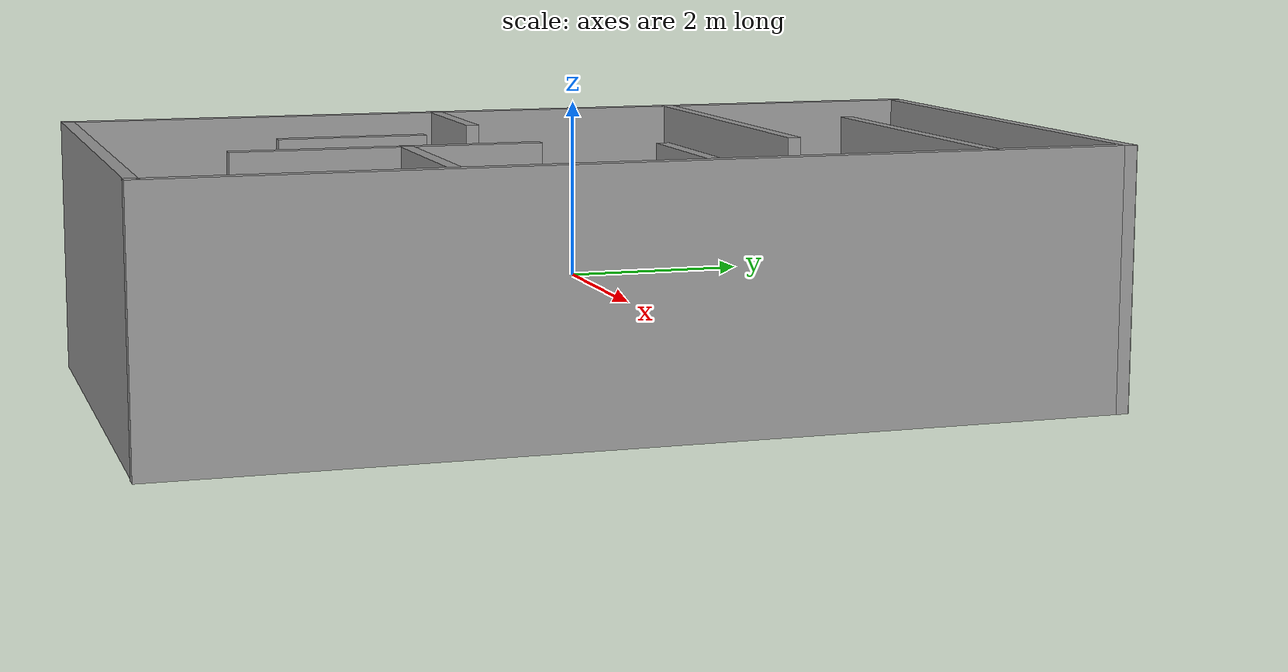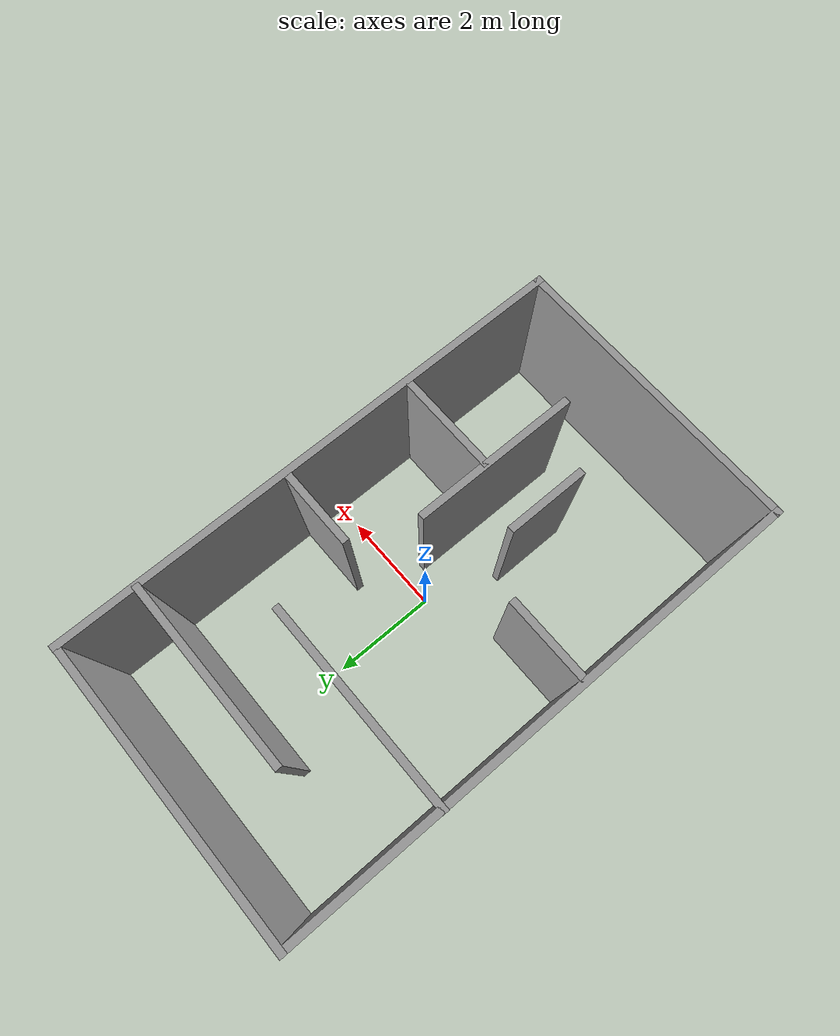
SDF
<?xml version='1.0'?>
<sdf version='1.7'>
  <model name='maze_medium'>
    <link name='Wall_11'>
      <pose>2.17621 0.615324 -0 0 -0 0</pose>
      <self_collide>0</self_collide>
      <enable_wind>0</enable_wind>
      <kinematic>0</kinematic>
      <inertial>
        <inertia>
          <ixx>0</ixx>
          <ixy>0</ixy>
          <ixz>0</ixz>
          <iyy>0</iyy>
          <iyz>0</iyz>
          <izz>0</izz>
        </inertia>
        <mass>0</mass>
        <pose>0 0 0 0 -0 0</pose>
      </inertial>
      <visual name='Wall_11_Visual'>
        <pose>0 0 0.15 0 -0 0</pose>
        <geometry>
          <box>
            <size>1.61952 0.15 3</size>
          </box>
        </geometry>
        <material>
          <script>
            <uri>file://media/materials/scripts/gazebo.material</uri>
            <name>Gazebo/Grey</name>
          </script>
          <ambient>1 1 1 1</ambient>
          <shader type='pixel'/>
        </material>
        <meta>
          <layer>0</layer>
        </meta>
        <transparency>0</transparency>
        <cast_shadows>1</cast_shadows>
      </visual>
      <collision name='Wall_11_Collision'>
        <laser_retro>0</laser_retro>
        <max_contacts>10</max_contacts>
        <pose>0 0 0.15 0 -0 0</pose>
        <geometry>
          <box>
            <size>1.61952 0.15 3</size>
          </box>
        </geometry>
        <surface>
          <friction>
            <ode>
              <mu>1</mu>
              <mu2>1</mu2>
              <fdir1>0 0 0</fdir1>
              <slip1>0</slip1>
              <slip2>0</slip2>
            </ode>
            <torsional>
              <coefficient>1</coefficient>
              <patch_radius>0</patch_radius>
              <surface_radius>0</surface_radius>
              <use_patch_radius>1</use_patch_radius>
              <ode>
                <slip>0</slip>
              </ode>
            </torsional>
          </friction>
          <bounce>
            <restitution_coefficient>0</restitution_coefficient>
            <threshold>1e+06</threshold>
          </bounce>
          <contact>
            <collide_without_contact>0</collide_without_contact>
            <collide_without_contact_bitmask>1</collide_without_contact_bitmask>
            <collide_bitmask>1</collide_bitmask>
            <ode>
              <soft_cfm>0</soft_cfm>
              <soft_erp>0.2</soft_erp>
              <kp>1e+13</kp>
              <kd>1</kd>
              <max_vel>0.01</max_vel>
              <min_depth>0</min_depth>
            </ode>
            <bullet>
              <split_impulse>1</split_impulse>
              <split_impulse_penetration_threshold>-0.01</split_impulse_penetration_threshold>
              <soft_cfm>0</soft_cfm>
              <soft_erp>0.2</soft_erp>
              <kp>1e+13</kp>
              <kd>1</kd>
            </bullet>
          </contact>
        </surface>
      </collision>
    </link>
    <link name='Wall_11_clone'>
      <pose>1.11344 3.80262 -0 0 -0 0</pose>
      <self_collide>0</self_collide>
      <enable_wind>0</enable_wind>
      <kinematic>0</kinematic>
      <inertial>
        <inertia>
          <ixx>0</ixx>
          <ixy>0</ixy>
          <ixz>0</ixz>
          <iyy>0</iyy>
          <iyz>0</iyz>
          <izz>0</izz>
        </inertia>
        <mass>0</mass>
        <pose>0 0 0 0 -0 0</pose>
      </inertial>
      <visual name='Wall_11_Visual'>
        <pose>0 0 0.15 0 -0 0</pose>
        <geometry>
          <box>
            <size>4.02621 0.15 3</size>
          </box>
        </geometry>
        <material>
          <script>
            <uri>file://media/materials/scripts/gazebo.material</uri>
            <name>Gazebo/Grey</name>
          </script>
          <ambient>1 1 1 1</ambient>
          <shader type='pixel'/>
        </material>
        <meta>
          <layer>0</layer>
        </meta>
        <transparency>0</transparency>
        <cast_shadows>1</cast_shadows>
      </visual>
      <collision name='Wall_11_Collision'>
        <laser_retro>0</laser_retro>
        <max_contacts>10</max_contacts>
        <pose>0 0 0.15 0 -0 0</pose>
        <geometry>
          <box>
            <size>4.02621 0.15 3</size>
          </box>
        </geometry>
        <surface>
          <friction>
            <ode>
              <mu>1</mu>
              <mu2>1</mu2>
              <fdir1>0 0 0</fdir1>
              <slip1>0</slip1>
              <slip2>0</slip2>
            </ode>
            <torsional>
              <coefficient>1</coefficient>
              <patch_radius>0</patch_radius>
              <surface_radius>0</surface_radius>
              <use_patch_radius>1</use_patch_radius>
              <ode>
                <slip>0</slip>
              </ode>
            </torsional>
          </friction>
          <bounce>
            <restitution_coefficient>0</restitution_coefficient>
            <threshold>1e+06</threshold>
          </bounce>
          <contact>
            <collide_without_contact>0</collide_without_contact>
            <collide_without_contact_bitmask>1</collide_without_contact_bitmask>
            <collide_bitmask>1</collide_bitmask>
            <ode>
              <soft_cfm>0</soft_cfm>
              <soft_erp>0.2</soft_erp>
              <kp>1e+13</kp>
              <kd>1</kd>
              <max_vel>0.01</max_vel>
              <min_depth>0</min_depth>
            </ode>
            <bullet>
              <split_impulse>1</split_impulse>
              <split_impulse_penetration_threshold>-0.01</split_impulse_penetration_threshold>
              <soft_cfm>0</soft_cfm>
              <soft_erp>0.2</soft_erp>
              <kp>1e+13</kp>
              <kd>1</kd>
            </bullet>
          </contact>
        </surface>
      </collision>
    </link>
    <link name='Wall_11_clone_0'>
      <pose>1.9324 -2.1728 0 0 -0 0</pose>
      <self_collide>0</self_collide>
      <enable_wind>0</enable_wind>
      <kinematic>0</kinematic>
      <inertial>
        <inertia>
          <ixx>0</ixx>
          <ixy>0</ixy>
          <ixz>0</ixz>
          <iyy>0</iyy>
          <iyz>0</iyz>
          <izz>0</izz>
        </inertia>
        <mass>0</mass>
        <pose>0 0 0 0 -0 0</pose>
      </inertial>
      <visual name='Wall_11_Visual'>
        <pose>0 0 0.15 0 -0 0</pose>
        <geometry>
          <box>
            <size>2.13924 0.15 3</size>
          </box>
        </geometry>
        <material>
          <script>
            <uri>file://media/materials/scripts/gazebo.material</uri>
            <name>Gazebo/Grey</name>
          </script>
          <ambient>1 1 1 1</ambient>
          <shader type='pixel'/>
        </material>
        <meta>
          <layer>0</layer>
        </meta>
        <transparency>0</transparency>
        <cast_shadows>1</cast_shadows>
      </visual>
      <collision name='Wall_11_Collision'>
        <laser_retro>0</laser_retro>
        <max_contacts>10</max_contacts>
        <pose>0 0 0.15 0 -0 0</pose>
        <geometry>
          <box>
            <size>2.13924 0.15 3</size>
          </box>
        </geometry>
        <surface>
          <friction>
            <ode>
              <mu>1</mu>
              <mu2>1</mu2>
              <fdir1>0 0 0</fdir1>
              <slip1>0</slip1>
              <slip2>0</slip2>
            </ode>
            <torsional>
              <coefficient>1</coefficient>
              <patch_radius>0</patch_radius>
              <surface_radius>0</surface_radius>
              <use_patch_radius>1</use_patch_radius>
              <ode>
                <slip>0</slip>
              </ode>
            </torsional>
          </friction>
          <bounce>
            <restitution_coefficient>0</restitution_coefficient>
            <threshold>1e+06</threshold>
          </bounce>
          <contact>
            <collide_without_contact>0</collide_without_contact>
            <collide_without_contact_bitmask>1</collide_without_contact_bitmask>
            <collide_bitmask>1</collide_bitmask>
            <ode>
              <soft_cfm>0</soft_cfm>
              <soft_erp>0.2</soft_erp>
              <kp>1e+13</kp>
              <kd>1</kd>
              <max_vel>0.01</max_vel>
              <min_depth>0</min_depth>
            </ode>
            <bullet>
              <split_impulse>1</split_impulse>
              <split_impulse_penetration_threshold>-0.01</split_impulse_penetration_threshold>
              <soft_cfm>0</soft_cfm>
              <soft_erp>0.2</soft_erp>
              <kp>1e+13</kp>
              <kd>1</kd>
            </bullet>
          </contact>
        </surface>
      </collision>
    </link>
    <link name='Wall_12'>
      <pose>0.884715 -2.38987 0 0 0 -1.5708</pose>
      <self_collide>0</self_collide>
      <enable_wind>0</enable_wind>
      <kinematic>0</kinematic>
      <inertial>
        <inertia>
          <ixx>0</ixx>
          <ixy>0</ixy>
          <ixz>0</ixz>
          <iyy>0</iyy>
          <iyz>0</iyz>
          <izz>0</izz>
        </inertia>
        <mass>0</mass>
        <pose>0 0 0 0 -0 0</pose>
      </inertial>
      <visual name='Wall_12_Visual'>
        <pose>0 0 0.15 0 -0 0</pose>
        <geometry>
          <box>
            <size>3.4719 0.15 3</size>
          </box>
        </geometry>
        <material>
          <script>
            <uri>file://media/materials/scripts/gazebo.material</uri>
            <name>Gazebo/Grey</name>
          </script>
          <ambient>1 1 1 1</ambient>
          <shader type='pixel'/>
        </material>
        <meta>
          <layer>0</layer>
        </meta>
        <transparency>0</transparency>
        <cast_shadows>1</cast_shadows>
      </visual>
      <collision name='Wall_12_Collision'>
        <laser_retro>0</laser_retro>
        <max_contacts>10</max_contacts>
        <pose>0 0 0.15 0 -0 0</pose>
        <geometry>
          <box>
            <size>3.4719 0.15 3</size>
          </box>
        </geometry>
        <surface>
          <friction>
            <ode>
              <mu>1</mu>
              <mu2>1</mu2>
              <fdir1>0 0 0</fdir1>
              <slip1>0</slip1>
              <slip2>0</slip2>
            </ode>
            <torsional>
              <coefficient>1</coefficient>
              <patch_radius>0</patch_radius>
              <surface_radius>0</surface_radius>
              <use_patch_radius>1</use_patch_radius>
              <ode>
                <slip>0</slip>
              </ode>
            </torsional>
          </friction>
          <bounce>
            <restitution_coefficient>0</restitution_coefficient>
            <threshold>1e+06</threshold>
          </bounce>
          <contact>
            <collide_without_contact>0</collide_without_contact>
            <collide_without_contact_bitmask>1</collide_without_contact_bitmask>
            <collide_bitmask>1</collide_bitmask>
            <ode>
              <soft_cfm>0</soft_cfm>
              <soft_erp>0.2</soft_erp>
              <kp>1e+13</kp>
              <kd>1</kd>
              <max_vel>0.01</max_vel>
              <min_depth>0</min_depth>
            </ode>
            <bullet>
              <split_impulse>1</split_impulse>
              <split_impulse_penetration_threshold>-0.01</split_impulse_penetration_threshold>
              <soft_cfm>0</soft_cfm>
              <soft_erp>0.2</soft_erp>
              <kp>1e+13</kp>
              <kd>1</kd>
            </bullet>
          </contact>
        </surface>
      </collision>
    </link>
    <link name='Wall_12_clone'>
      <pose>-0.299631 -2.5257 0 0 0 -1.5708</pose>
      <self_collide>0</self_collide>
      <enable_wind>0</enable_wind>
      <kinematic>0</kinematic>
      <inertial>
        <inertia>
          <ixx>0</ixx>
          <ixy>0</ixy>
          <ixz>0</ixz>
          <iyy>0</iyy>
          <iyz>0</iyz>
          <izz>0</izz>
        </inertia>
        <mass>0</mass>
        <pose>0 0 0 0 -0 0</pose>
      </inertial>
      <visual name='Wall_12_Visual'>
        <pose>0 0 0.15 0 -0 0</pose>
        <geometry>
          <box>
            <size>1.7026 0.15 3</size>
          </box>
        </geometry>
        <material>
          <script>
            <uri>file://media/materials/scripts/gazebo.material</uri>
            <name>Gazebo/Grey</name>
          </script>
          <ambient>1 1 1 1</ambient>
          <shader type='pixel'/>
        </material>
        <meta>
          <layer>0</layer>
        </meta>
        <transparency>0</transparency>
        <cast_shadows>1</cast_shadows>
      </visual>
      <collision name='Wall_12_Collision'>
        <laser_retro>0</laser_retro>
        <max_contacts>10</max_contacts>
        <pose>0 0 0.15 0 -0 0</pose>
        <geometry>
          <box>
            <size>1.7026 0.15 3</size>
          </box>
        </geometry>
        <surface>
          <friction>
            <ode>
              <mu>1</mu>
              <mu2>1</mu2>
              <fdir1>0 0 0</fdir1>
              <slip1>0</slip1>
              <slip2>0</slip2>
            </ode>
            <torsional>
              <coefficient>1</coefficient>
              <patch_radius>0</patch_radius>
              <surface_radius>0</surface_radius>
              <use_patch_radius>1</use_patch_radius>
              <ode>
                <slip>0</slip>
              </ode>
            </torsional>
          </friction>
          <bounce>
            <restitution_coefficient>0</restitution_coefficient>
            <threshold>1e+06</threshold>
          </bounce>
          <contact>
            <collide_without_contact>0</collide_without_contact>
            <collide_without_contact_bitmask>1</collide_without_contact_bitmask>
            <collide_bitmask>1</collide_bitmask>
            <ode>
              <soft_cfm>0</soft_cfm>
              <soft_erp>0.2</soft_erp>
              <kp>1e+13</kp>
              <kd>1</kd>
              <max_vel>0.01</max_vel>
              <min_depth>0</min_depth>
            </ode>
            <bullet>
              <split_impulse>1</split_impulse>
              <split_impulse_penetration_threshold>-0.01</split_impulse_penetration_threshold>
              <soft_cfm>0</soft_cfm>
              <soft_erp>0.2</soft_erp>
              <kp>1e+13</kp>
              <kd>1</kd>
            </bullet>
          </contact>
        </surface>
      </collision>
    </link>
    <link name='Wall_16'>
      <pose>-0.935679 2.22719 0 0 -0 0</pose>
      <self_collide>0</self_collide>
      <enable_wind>0</enable_wind>
      <kinematic>0</kinematic>
      <inertial>
        <inertia>
          <ixx>0</ixx>
          <ixy>0</ixy>
          <ixz>0</ixz>
          <iyy>0</iyy>
          <iyz>0</iyz>
          <izz>0</izz>
        </inertia>
        <mass>0</mass>
        <pose>0 0 0 0 -0 0</pose>
      </inertial>
      <visual name='Wall_16_Visual'>
        <pose>0 0 0.15 0 -0 0</pose>
        <geometry>
          <box>
            <size>4.37775 0.15 3</size>
          </box>
        </geometry>
        <material>
          <script>
            <uri>file://media/materials/scripts/gazebo.material</uri>
            <name>Gazebo/Grey</name>
          </script>
          <ambient>1 1 1 1</ambient>
          <shader type='pixel'/>
        </material>
        <meta>
          <layer>0</layer>
        </meta>
        <transparency>0</transparency>
        <cast_shadows>1</cast_shadows>
      </visual>
      <collision name='Wall_16_Collision'>
        <laser_retro>0</laser_retro>
        <max_contacts>10</max_contacts>
        <pose>0 0 0.15 0 -0 0</pose>
        <geometry>
          <box>
            <size>4.37775 0.15 3</size>
          </box>
        </geometry>
        <surface>
          <friction>
            <ode>
              <mu>1</mu>
              <mu2>1</mu2>
              <fdir1>0 0 0</fdir1>
              <slip1>0</slip1>
              <slip2>0</slip2>
            </ode>
            <torsional>
              <coefficient>1</coefficient>
              <patch_radius>0</patch_radius>
              <surface_radius>0</surface_radius>
              <use_patch_radius>1</use_patch_radius>
              <ode>
                <slip>0</slip>
              </ode>
            </torsional>
          </friction>
          <bounce>
            <restitution_coefficient>0</restitution_coefficient>
            <threshold>1e+06</threshold>
          </bounce>
          <contact>
            <collide_without_contact>0</collide_without_contact>
            <collide_without_contact_bitmask>1</collide_without_contact_bitmask>
            <collide_bitmask>1</collide_bitmask>
            <ode>
              <soft_cfm>0</soft_cfm>
              <soft_erp>0.2</soft_erp>
              <kp>1e+13</kp>
              <kd>1</kd>
              <max_vel>0.01</max_vel>
              <min_depth>0</min_depth>
            </ode>
            <bullet>
              <split_impulse>1</split_impulse>
              <split_impulse_penetration_threshold>-0.01</split_impulse_penetration_threshold>
              <soft_cfm>0</soft_cfm>
              <soft_erp>0.2</soft_erp>
              <kp>1e+13</kp>
              <kd>1</kd>
            </bullet>
          </contact>
        </surface>
      </collision>
    </link>
    <link name='Wall_4'>
      <pose>0.00675 -5.4147 0 0 -0 0</pose>
      <self_collide>0</self_collide>
      <enable_wind>0</enable_wind>
      <kinematic>0</kinematic>
      <visual name='Wall_4_Visual'>
        <pose>0 0 0.15 0 -0 0</pose>
        <geometry>
          <box>
            <size>6.25 0.15 3</size>
          </box>
        </geometry>
        <material>
          <script>
            <uri>file://media/materials/scripts/gazebo.material</uri>
            <name>Gazebo/Grey</name>
          </script>
          <ambient>1 1 1 1</ambient>
          <shader type='pixel'/>
        </material>
        <meta>
          <layer>0</layer>
        </meta>
        <transparency>0</transparency>
        <cast_shadows>1</cast_shadows>
      </visual>
      <collision name='Wall_4_Collision'>
        <laser_retro>0</laser_retro>
        <max_contacts>10</max_contacts>
        <pose>0 0 0.15 0 -0 0</pose>
        <geometry>
          <box>
            <size>6.25 0.15 3</size>
          </box>
        </geometry>
        <surface>
          <friction>
            <ode>
              <mu>1</mu>
              <mu2>1</mu2>
              <fdir1>0 0 0</fdir1>
              <slip1>0</slip1>
              <slip2>0</slip2>
            </ode>
            <torsional>
              <coefficient>1</coefficient>
              <patch_radius>0</patch_radius>
              <surface_radius>0</surface_radius>
              <use_patch_radius>1</use_patch_radius>
              <ode>
                <slip>0</slip>
              </ode>
            </torsional>
          </friction>
          <bounce>
            <restitution_coefficient>0</restitution_coefficient>
            <threshold>1e+06</threshold>
          </bounce>
          <contact>
            <collide_without_contact>0</collide_without_contact>
            <collide_without_contact_bitmask>1</collide_without_contact_bitmask>
            <collide_bitmask>1</collide_bitmask>
            <ode>
              <soft_cfm>0</soft_cfm>
              <soft_erp>0.2</soft_erp>
              <kp>1e+13</kp>
              <kd>1</kd>
              <max_vel>0.01</max_vel>
              <min_depth>0</min_depth>
            </ode>
            <bullet>
              <split_impulse>1</split_impulse>
              <split_impulse_penetration_threshold>-0.01</split_impulse_penetration_threshold>
              <soft_cfm>0</soft_cfm>
              <soft_erp>0.2</soft_erp>
              <kp>1e+13</kp>
              <kd>1</kd>
            </bullet>
          </contact>
        </surface>
      </collision>
    </link>
    <link name='Wall_5'>
      <pose>3.05675 0 0 0 -0 1.5708</pose>
      <self_collide>0</self_collide>
      <enable_wind>0</enable_wind>
      <kinematic>0</kinematic>
      <inertial>
        <inertia>
          <ixx>0</ixx>
          <ixy>0</ixy>
          <ixz>0</ixz>
          <iyy>0</iyy>
          <iyz>0</iyz>
          <izz>0</izz>
        </inertia>
        <mass>0</mass>
        <pose>0 0 0 0 -0 0</pose>
      </inertial>
      <visual name='Wall_5_Visual'>
        <pose>0 0 0.15 0 -0 0</pose>
        <geometry>
          <box>
            <size>10.9958 0.15 3</size>
          </box>
        </geometry>
        <material>
          <script>
            <uri>file://media/materials/scripts/gazebo.material</uri>
            <name>Gazebo/Grey</name>
          </script>
          <ambient>1 1 1 1</ambient>
          <shader type='pixel'/>
        </material>
        <meta>
          <layer>0</layer>
        </meta>
        <transparency>0</transparency>
        <cast_shadows>1</cast_shadows>
      </visual>
      <collision name='Wall_5_Collision'>
        <laser_retro>0</laser_retro>
        <max_contacts>10</max_contacts>
        <pose>0 0 0.15 0 -0 0</pose>
        <geometry>
          <box>
            <size>10.9958 0.15 3</size>
          </box>
        </geometry>
        <surface>
          <friction>
            <ode>
              <mu>1</mu>
              <mu2>1</mu2>
              <fdir1>0 0 0</fdir1>
              <slip1>0</slip1>
              <slip2>0</slip2>
            </ode>
            <torsional>
              <coefficient>1</coefficient>
              <patch_radius>0</patch_radius>
              <surface_radius>0</surface_radius>
              <use_patch_radius>1</use_patch_radius>
              <ode>
                <slip>0</slip>
              </ode>
            </torsional>
          </friction>
          <bounce>
            <restitution_coefficient>0</restitution_coefficient>
            <threshold>1e+06</threshold>
          </bounce>
          <contact>
            <collide_without_contact>0</collide_without_contact>
            <collide_without_contact_bitmask>1</collide_without_contact_bitmask>
            <collide_bitmask>1</collide_bitmask>
            <ode>
              <soft_cfm>0</soft_cfm>
              <soft_erp>0.2</soft_erp>
              <kp>1e+13</kp>
              <kd>1</kd>
              <max_vel>0.01</max_vel>
              <min_depth>0</min_depth>
            </ode>
            <bullet>
              <split_impulse>1</split_impulse>
              <split_impulse_penetration_threshold>-0.01</split_impulse_penetration_threshold>
              <soft_cfm>0</soft_cfm>
              <soft_erp>0.2</soft_erp>
              <kp>1e+13</kp>
              <kd>1</kd>
            </bullet>
          </contact>
        </surface>
      </collision>
    </link>
    <link name='Wall_6'>
      <pose>0.006756 5.41697 0 0 -0 3.14159</pose>
      <self_collide>0</self_collide>
      <enable_wind>0</enable_wind>
      <kinematic>0</kinematic>
      <visual name='Wall_6_Visual'>
        <pose>0 0 0.15 0 -0 0</pose>
        <geometry>
          <box>
            <size>6.25 0.15 3</size>
          </box>
        </geometry>
        <material>
          <script>
            <uri>file://media/materials/scripts/gazebo.material</uri>
            <name>Gazebo/Grey</name>
          </script>
          <ambient>1 1 1 1</ambient>
          <shader type='pixel'/>
        </material>
        <meta>
          <layer>0</layer>
        </meta>
        <transparency>0</transparency>
        <cast_shadows>1</cast_shadows>
      </visual>
      <collision name='Wall_6_Collision'>
        <laser_retro>0</laser_retro>
        <max_contacts>10</max_contacts>
        <pose>0 0 0.15 0 -0 0</pose>
        <geometry>
          <box>
            <size>6.25 0.15 3</size>
          </box>
        </geometry>
        <surface>
          <friction>
            <ode>
              <mu>1</mu>
              <mu2>1</mu2>
              <fdir1>0 0 0</fdir1>
              <slip1>0</slip1>
              <slip2>0</slip2>
            </ode>
            <torsional>
              <coefficient>1</coefficient>
              <patch_radius>0</patch_radius>
              <surface_radius>0</surface_radius>
              <use_patch_radius>1</use_patch_radius>
              <ode>
                <slip>0</slip>
              </ode>
            </torsional>
          </friction>
          <bounce>
            <restitution_coefficient>0</restitution_coefficient>
            <threshold>1e+06</threshold>
          </bounce>
          <contact>
            <collide_without_contact>0</collide_without_contact>
            <collide_without_contact_bitmask>1</collide_without_contact_bitmask>
            <collide_bitmask>1</collide_bitmask>
            <ode>
              <soft_cfm>0</soft_cfm>
              <soft_erp>0.2</soft_erp>
              <kp>1e+13</kp>
              <kd>1</kd>
              <max_vel>0.01</max_vel>
              <min_depth>0</min_depth>
            </ode>
            <bullet>
              <split_impulse>1</split_impulse>
              <split_impulse_penetration_threshold>-0.01</split_impulse_penetration_threshold>
              <soft_cfm>0</soft_cfm>
              <soft_erp>0.2</soft_erp>
              <kp>1e+13</kp>
              <kd>1</kd>
            </bullet>
          </contact>
        </surface>
      </collision>
    </link>
    <link name='Wall_7'>
      <pose>-3.04325 0 0 0 0 -1.5708</pose>
      <self_collide>0</self_collide>
      <enable_wind>0</enable_wind>
      <kinematic>0</kinematic>
      <inertial>
        <inertia>
          <ixx>0</ixx>
          <ixy>0</ixy>
          <ixz>0</ixz>
          <iyy>0</iyy>
          <iyz>0</iyz>
          <izz>0</izz>
        </inertia>
        <mass>0</mass>
        <pose>0 0 0 0 -0 0</pose>
      </inertial>
      <gravity>1</gravity>
      <visual name='Wall_7_Visual'>
        <pose>0 0 0.15 0 -0 0</pose>
        <geometry>
          <box>
            <size>10.9696 0.15 3</size>
          </box>
        </geometry>
        <material>
          <script>
            <uri>file://media/materials/scripts/gazebo.material</uri>
            <name>Gazebo/Grey</name>
          </script>
          <ambient>1 1 1 1</ambient>
          <shader type='pixel'>
            <normal_map>__default__</normal_map>
          </shader>
          <diffuse>0.7 0.7 0.7 1</diffuse>
          <specular>0.01 0.01 0.01 1</specular>
          <emissive>0 0 0 1</emissive>
        </material>
        <meta>
          <layer>0</layer>
        </meta>
        <transparency>0</transparency>
        <cast_shadows>1</cast_shadows>
      </visual>
      <collision name='Wall_7_Collision'>
        <laser_retro>0</laser_retro>
        <max_contacts>10</max_contacts>
        <pose>0 0 0.15 0 -0 0</pose>
        <geometry>
          <box>
            <size>11.8412 0.15 3</size>
          </box>
        </geometry>
        <surface>
          <friction>
            <ode>
              <mu>1</mu>
              <mu2>1</mu2>
              <fdir1>0 0 0</fdir1>
              <slip1>0</slip1>
              <slip2>0</slip2>
            </ode>
            <torsional>
              <coefficient>1</coefficient>
              <patch_radius>0</patch_radius>
              <surface_radius>0</surface_radius>
              <use_patch_radius>1</use_patch_radius>
              <ode>
                <slip>0</slip>
              </ode>
            </torsional>
          </friction>
          <bounce>
            <restitution_coefficient>0</restitution_coefficient>
            <threshold>1e+06</threshold>
          </bounce>
          <contact>
            <collide_without_contact>0</collide_without_contact>
            <collide_without_contact_bitmask>1</collide_without_contact_bitmask>
            <collide_bitmask>1</collide_bitmask>
            <ode>
              <soft_cfm>0</soft_cfm>
              <soft_erp>0.2</soft_erp>
              <kp>1e+13</kp>
              <kd>1</kd>
              <max_vel>0.01</max_vel>
              <min_depth>0</min_depth>
            </ode>
            <bullet>
              <split_impulse>1</split_impulse>
              <split_impulse_penetration_threshold>-0.01</split_impulse_penetration_threshold>
              <soft_cfm>0</soft_cfm>
              <soft_erp>0.2</soft_erp>
              <kp>1e+13</kp>
              <kd>1</kd>
            </bullet>
          </contact>
        </surface>
      </collision>
    </link>
    <link name='Wall_9'>
      <pose>-2.15811 -0.866433 0 0 -0 0</pose>
      <self_collide>0</self_collide>
      <enable_wind>0</enable_wind>
      <kinematic>0</kinematic>
      <inertial>
        <inertia>
          <ixx>0</ixx>
          <ixy>0</ixy>
          <ixz>0</ixz>
          <iyy>0</iyy>
          <iyz>0</iyz>
          <izz>0</izz>
        </inertia>
        <mass>0</mass>
        <pose>0 0 0 0 -0 0</pose>
      </inertial>
      <visual name='Wall_9_Visual'>
        <pose>0 0 0.15 0 -0 0</pose>
        <geometry>
          <box>
            <size>1.85182 0.15 3</size>
          </box>
        </geometry>
        <material>
          <script>
            <uri>file://media/materials/scripts/gazebo.material</uri>
            <name>Gazebo/Grey</name>
          </script>
          <ambient>1 1 1 1</ambient>
          <shader type='pixel'/>
        </material>
        <meta>
          <layer>0</layer>
        </meta>
        <transparency>0</transparency>
        <cast_shadows>1</cast_shadows>
      </visual>
      <collision name='Wall_9_Collision'>
        <laser_retro>0</laser_retro>
        <max_contacts>10</max_contacts>
        <pose>0 0 0.15 0 -0 0</pose>
        <geometry>
          <box>
            <size>1.85182 0.15 3</size>
          </box>
        </geometry>
        <surface>
          <friction>
            <ode>
              <mu>1</mu>
              <mu2>1</mu2>
              <fdir1>0 0 0</fdir1>
              <slip1>0</slip1>
              <slip2>0</slip2>
            </ode>
            <torsional>
              <coefficient>1</coefficient>
              <patch_radius>0</patch_radius>
              <surface_radius>0</surface_radius>
              <use_patch_radius>1</use_patch_radius>
              <ode>
                <slip>0</slip>
              </ode>
            </torsional>
          </friction>
          <bounce>
            <restitution_coefficient>0</restitution_coefficient>
            <threshold>1e+06</threshold>
          </bounce>
          <contact>
            <collide_without_contact>0</collide_without_contact>
            <collide_without_contact_bitmask>1</collide_without_contact_bitmask>
            <collide_bitmask>1</collide_bitmask>
            <ode>
              <soft_cfm>0</soft_cfm>
              <soft_erp>0.2</soft_erp>
              <kp>1e+13</kp>
              <kd>1</kd>
              <max_vel>0.01</max_vel>
              <min_depth>0</min_depth>
            </ode>
            <bullet>
              <split_impulse>1</split_impulse>
              <split_impulse_penetration_threshold>-0.01</split_impulse_penetration_threshold>
              <soft_cfm>0</soft_cfm>
              <soft_erp>0.2</soft_erp>
              <kp>1e+13</kp>
              <kd>1</kd>
            </bullet>
          </contact>
        </surface>
      </collision>
    </link>
    <static>1</static>
    <allow_auto_disable>1</allow_auto_disable>
  </model>
</sdf>
